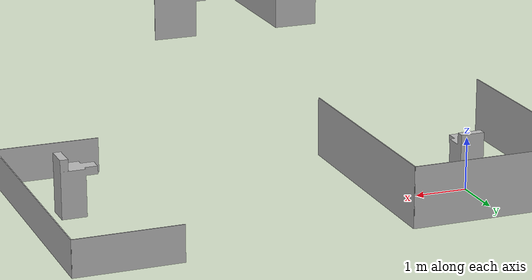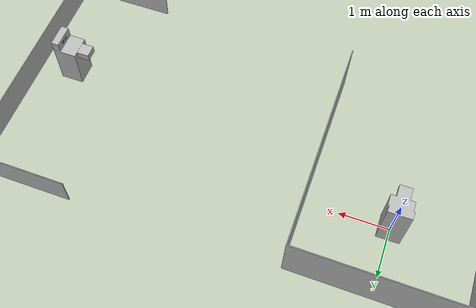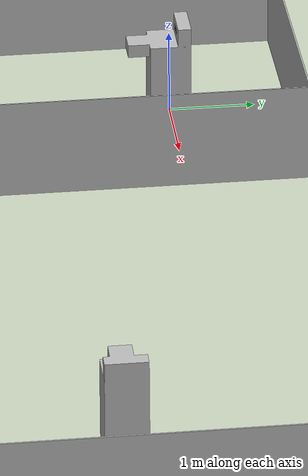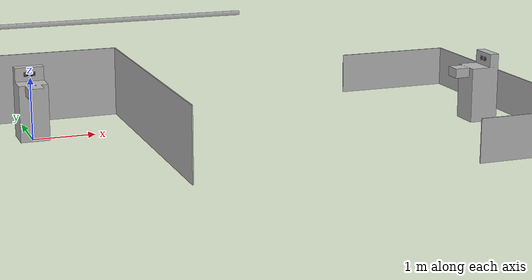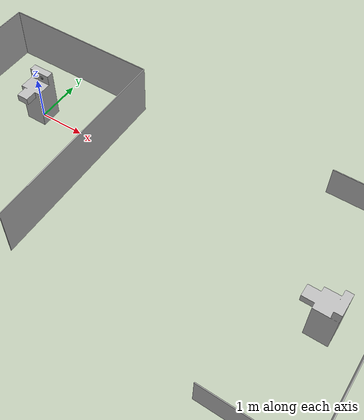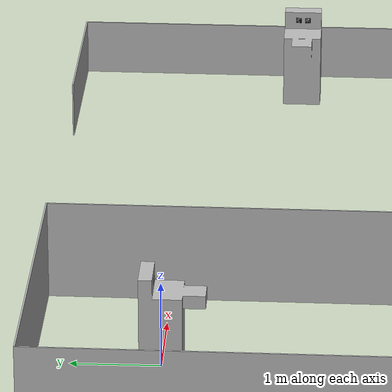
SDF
<?xml version="1.0" ?>
<sdf version="1.6">
  <model name="bn_sim_default">
    <static>true</static>
    <link name="walls">>
      <visual name="walls_v">
        <geometry>
          <mesh>
            <uri>model://bn_sim/meshes/walls.stl</uri>
            <scale>0.1 0.1 0.1</scale>
          </mesh>
        </geometry>
      </visual>
      <collision name="walls_c">
        <geometry>
          <mesh>
            <uri>model://bn_sim/meshes/walls.stl</uri>
            <scale>0.1 0.1 0.1</scale>
          </mesh>
        </geometry>
      </collision>
    </link>
    <link name="charger">
      <visual name="marker_v">
        <pose>0 0 0.04 0 0 0</pose>
        <geometry>
          <mesh>
            <uri>model://bn_sim/meshes/marker.stl</uri>
            <scale>0.15 0.15 0.15</scale>
          </mesh>
        </geometry>
        <material>
          <ambient>0 0 0 1</ambient>
          <diffuse>0 0 0 1</diffuse>
          <specular>0 0 0 1</specular>
          <emissive>0 0 0 1</emissive>
        </material>
      </visual>
      <visual name="charger_v">
        <pose>0 0 0.04 0 0 0</pose>
        <geometry>
          <mesh>
            <uri>model://bn_sim/meshes/charge.stl</uri>
            <scale>0.15 0.15 0.15</scale>
          </mesh>
        </geometry>
      </visual>
      <collision name="charger_c">
        <pose>0 0 0.04 0 0 0</pose>
        <geometry>
          <mesh>
            <uri>model://bn_sim/meshes/charge.stl</uri>
            <scale>0.15 0.15 0.15</scale>
          </mesh>
        </geometry>
      </collision>
    </link>
    <link name="charger_2">
      <pose>7.2 -1.3 0.04 0 0 -1.5708</pose>
      <visual name="marker_v">
        <geometry>
          <mesh>
            <uri>model://bn_sim/meshes/marker.stl</uri>
            <scale>0.15 0.15 0.15</scale>
          </mesh>
        </geometry>
        <material>
          <ambient>0 0 0 1</ambient>
          <diffuse>0 0 0 1</diffuse>
          <specular>0 0 0 1</specular>
          <emissive>0 0 0 1</emissive>
        </material>
      </visual>
      <visual name="charger_v">
        <geometry>
          <mesh>
            <uri>model://bn_sim/meshes/charge.stl</uri>
            <scale>0.15 0.15 0.15</scale>
          </mesh>
        </geometry>
      </visual>
      <collision name="charger_c">
        <geometry>
          <mesh>
            <uri>model://bn_sim/meshes/charge.stl</uri>
            <scale>0.15 0.15 0.15</scale>
          </mesh>
        </geometry>
      </collision>
    </link>
  </model>
</sdf>
